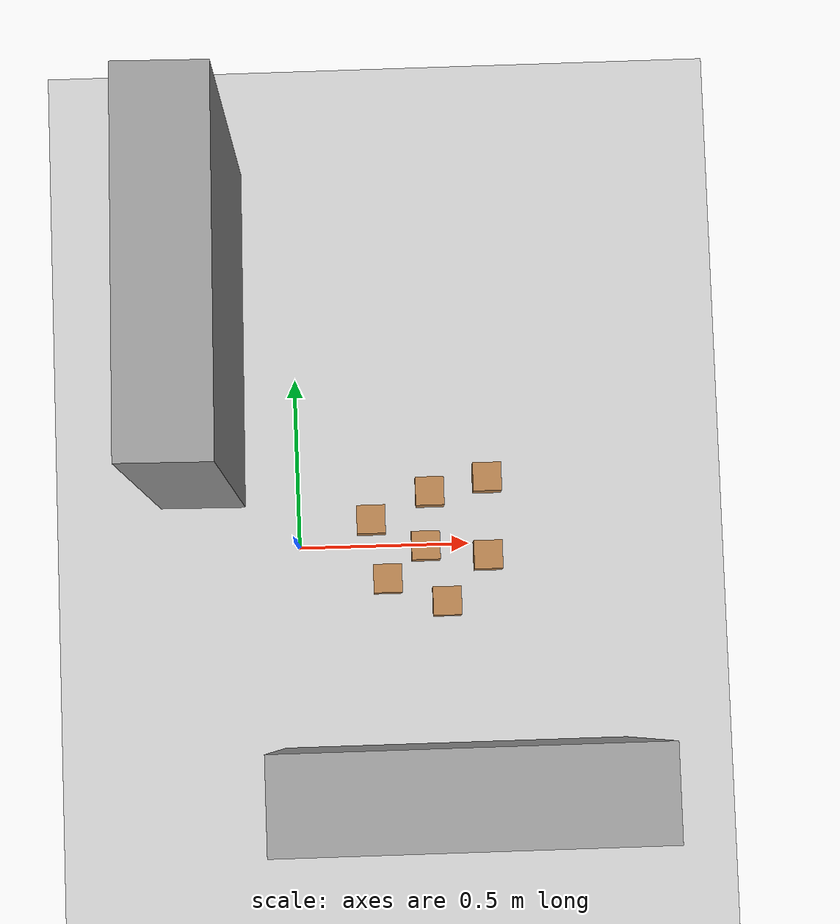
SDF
<sdf version="1.6">
 <world name="default">
  <light name="sun" type="directional">
   <pose>0 0 10 0 -0 0</pose>
   <diffuse>0.8 0.8 0.8 1</diffuse>
   <specular>0.2 0.2 0.2 1</specular>
   <attenuation>
    <range>1000</range>
    <constant>0.9</constant>
    <linear>0.01</linear>
    <quadratic>0.001</quadratic>
   </attenuation>
   <direction>-0.5 0.1 -0.9</direction>
  </light>
  <model name="ground_plane">
   <static>1</static>
   <link name="link">
    <collision name="collision">
     <geometry><plane><normal>0 0 1</normal><size>100 100</size></plane></geometry>
     <surface>
      <contact><collide_bitmask>65535</collide_bitmask></contact>
      <friction><ode><mu>100</mu><mu2>50</mu2></ode></friction>
     </surface>
    </collision>
    <visual name="visual">
     <cast_shadows>0</cast_shadows>
     <geometry><plane><normal>0 0 1</normal><size>100 100</size></plane></geometry>
     <material>
      <script><uri>file://media/materials/scripts/gazebo.material</uri><name>Gazebo/Grey</name></script>
     </material>
    </visual>
   </link>
  </model>
  <gravity>0 0 -9.8</gravity>
  <magnetic_field>6e-06 2.3e-05 -4.2e-05</magnetic_field>
  <atmosphere type="adiabatic"/>
  <physics name="default_physics" default="0" type="ode">
   <max_step_size>0.001</max_step_size>
   <real_time_factor>1</real_time_factor>
   <real_time_update_rate>1000</real_time_update_rate>
  </physics>
  <scene><ambient>0.4 0.4 0.4 1</ambient><background>0.7 0.7 0.7 1</background><shadows>1</shadows></scene>
  <audio><device>default</device></audio>
  <spherical_coordinates>
   <surface_model>EARTH_WGS84</surface_model>
   <latitude_deg>0</latitude_deg>
   <longitude_deg>0</longitude_deg>
   <elevation>0</elevation>
   <heading_deg>0</heading_deg>
  </spherical_coordinates>
  <model name="cube_red">
   <link name="link">
    <pose>0 0 0.0375 0 -0 0</pose>
    <inertial>
     <mass>0.2249</mass>
     <inertia>
      <ixx>0.00021084</ixx>
      <ixy>0</ixy>
      <ixz>0</ixz>
      <iyy>0.00021084</iyy>
      <iyz>0</iyz>
      <izz>0.00021084</izz>
     </inertia>
    </inertial>
    <visual name="visual">
     <geometry><box><size>0.075 0.075 0.075</size></box></geometry>
     <material>
      <script><uri>file://media/materials/scripts/gazebo.material</uri><name>Gazebo/Wood</name></script>
      <shader type="vertex"><normal_map>__default__</normal_map></shader>
      <ambient>0.937 0.161 0.161 1</ambient>
      <diffuse>0.937 0.161 0.161 1</diffuse>
      <specular>0.937 0.161 0.161 1</specular>
      <emissive>0 0 0 1</emissive>
     </material>
    </visual>
    <collision name="collision">
     <geometry><box><size>0.075 0.075 0.075</size></box></geometry>
     <surface>
      <friction>
       <ode><mu>1</mu><mu2>1</mu2><fdir1>0 0 0</fdir1><slip1>0</slip1><slip2>0</slip2></ode>
       <torsional>
        <coefficient>1</coefficient>
        <patch_radius>0</patch_radius>
        <surface_radius>0.01</surface_radius>
        <use_patch_radius>0</use_patch_radius>
        <ode><slip>0</slip></ode>
       </torsional>
      </friction>
      <bounce><restitution_coefficient>0</restitution_coefficient><threshold>1e+06</threshold></bounce>
      <contact>
       <collide_without_contact>0</collide_without_contact>
       <collide_without_contact_bitmask>1</collide_without_contact_bitmask>
       <collide_bitmask>1</collide_bitmask>
       <ode>
        <soft_cfm>0</soft_cfm>
        <soft_erp>0.2</soft_erp>
        <kp>100000</kp>
        <kd>100</kd>
        <max_vel>100</max_vel>
        <min_depth>0.001</min_depth>
       </ode>
       <bullet>
        <split_impulse>1</split_impulse>
        <split_impulse_penetration_threshold>-0.01</split_impulse_penetration_threshold>
        <soft_cfm>0</soft_cfm>
        <soft_erp>0.2</soft_erp>
        <kp>100000</kp>
        <kd>100</kd>
       </bullet>
      </contact>
     </surface>
    </collision>
   </link>
   <static>0</static>
   <pose>0.410301 -0.205673 0.773995 0 -0 0</pose>
  </model>
  <model name="cube_green">
   <link name="link">
    <pose>0 0 0.0375 0 -0 0</pose>
    <inertial>
     <mass>0.2249</mass>
     <inertia>
      <ixx>0.00021084</ixx>
      <ixy>0</ixy>
      <ixz>0</ixz>
      <iyy>0.00021084</iyy>
      <iyz>0</iyz>
      <izz>0.00021084</izz>
     </inertia>
    </inertial>
    <visual name="visual">
     <geometry><box><size>0.075 0.075 0.075</size></box></geometry>
     <material>
      <script><uri>file://media/materials/scripts/gazebo.material</uri><name>Gazebo/Wood</name></script>
      <ambient>0.306 0.604 0.024 1</ambient>
      <shader type="vertex"><normal_map>__default__</normal_map></shader>
      <diffuse>0.306 0.604 0.024 1</diffuse>
      <specular>0.306 0.604 0.024 1</specular>
      <emissive>0 0 0 1</emissive>
     </material>
    </visual>
    <collision name="collision">
     <geometry><box><size>0.075 0.075 0.075</size></box></geometry>
     <surface>
      <friction>
       <ode><mu>1</mu><mu2>1</mu2><fdir1>0 0 0</fdir1><slip1>0</slip1><slip2>0</slip2></ode>
       <torsional>
        <coefficient>1</coefficient>
        <patch_radius>0</patch_radius>
        <surface_radius>0.01</surface_radius>
        <use_patch_radius>0</use_patch_radius>
        <ode><slip>0</slip></ode>
       </torsional>
      </friction>
      <bounce><restitution_coefficient>0</restitution_coefficient><threshold>1e+06</threshold></bounce>
      <contact>
       <collide_without_contact>0</collide_without_contact>
       <collide_without_contact_bitmask>1</collide_without_contact_bitmask>
       <collide_bitmask>1</collide_bitmask>
       <ode>
        <soft_cfm>0</soft_cfm>
        <soft_erp>0.2</soft_erp>
        <kp>100000</kp>
        <kd>100</kd>
        <max_vel>100</max_vel>
        <min_depth>0.001</min_depth>
       </ode>
       <bullet>
        <split_impulse>1</split_impulse>
        <split_impulse_penetration_threshold>-0.01</split_impulse_penetration_threshold>
        <soft_cfm>0</soft_cfm>
        <soft_erp>0.2</soft_erp>
        <kp>100000</kp>
        <kd>100</kd>
       </bullet>
      </contact>
     </surface>
    </collision>
   </link>
   <static>0</static>
   <pose>0.256092 -0.141607 0.773995 0 -0 0</pose>
  </model>
  <model name="cube_red_clone">
   <link name="link">
    <pose>0 0 0.0375 0 -0 0</pose>
    <inertial>
     <mass>0.2249</mass>
     <inertia>
      <ixx>0.00021084</ixx>
      <ixy>0</ixy>
      <ixz>0</ixz>
      <iyy>0.00021084</iyy>
      <iyz>0</iyz>
      <izz>0.00021084</izz>
     </inertia>
    </inertial>
    <visual name="visual">
     <geometry><box><size>0.075 0.075 0.075</size></box></geometry>
     <material>
      <script><uri>file://media/materials/scripts/gazebo.material</uri><name>Gazebo/Wood</name></script>
      <shader type="vertex"><normal_map>__default__</normal_map></shader>
      <ambient>0.937 0.161 0.161 1</ambient>
      <diffuse>0.937 0.161 0.161 1</diffuse>
      <specular>0.937 0.161 0.161 1</specular>
      <emissive>0 0 0 1</emissive>
     </material>
    </visual>
    <collision name="collision">
     <geometry><box><size>0.075 0.075 0.075</size></box></geometry>
     <surface>
      <friction>
       <ode><mu>1</mu><mu2>1</mu2><fdir1>0 0 0</fdir1><slip1>0</slip1><slip2>0</slip2></ode>
       <torsional>
        <coefficient>1</coefficient>
        <patch_radius>0</patch_radius>
        <surface_radius>0.01</surface_radius>
        <use_patch_radius>0</use_patch_radius>
        <ode><slip>0</slip></ode>
       </torsional>
      </friction>
      <bounce><restitution_coefficient>0</restitution_coefficient><threshold>1e+06</threshold></bounce>
      <contact>
       <collide_without_contact>0</collide_without_contact>
       <collide_without_contact_bitmask>1</collide_without_contact_bitmask>
       <collide_bitmask>1</collide_bitmask>
       <ode>
        <soft_cfm>0</soft_cfm>
        <soft_erp>0.2</soft_erp>
        <kp>100000</kp>
        <kd>100</kd>
        <max_vel>100</max_vel>
        <min_depth>0.001</min_depth>
       </ode>
       <bullet>
        <split_impulse>1</split_impulse>
        <split_impulse_penetration_threshold>-0.01</split_impulse_penetration_threshold>
        <soft_cfm>0</soft_cfm>
        <soft_erp>0.2</soft_erp>
        <kp>100000</kp>
        <kd>100</kd>
       </bullet>
      </contact>
     </surface>
    </collision>
   </link>
   <static>0</static>
   <pose>0.526025 0.117655 0.773995 0 -0 0</pose>
  </model>
  <model name="cube_red_clone_0">
   <link name="link">
    <pose>0 0 0.0375 0 -0 0</pose>
    <inertial>
     <mass>0.2249</mass>
     <inertia>
      <ixx>0.00021084</ixx>
      <ixy>0</ixy>
      <ixz>0</ixz>
      <iyy>0.00021084</iyy>
      <iyz>0</iyz>
      <izz>0.00021084</izz>
     </inertia>
    </inertial>
    <visual name="visual">
     <geometry><box><size>0.075 0.075 0.075</size></box></geometry>
     <material>
      <script><uri>file://media/materials/scripts/gazebo.material</uri><name>Gazebo/Wood</name></script>
      <shader type="vertex"><normal_map>__default__</normal_map></shader>
      <ambient>0.937 0.161 0.161 1</ambient>
      <diffuse>0.937 0.161 0.161 1</diffuse>
      <specular>0.937 0.161 0.161 1</specular>
      <emissive>0 0 0 1</emissive>
     </material>
    </visual>
    <collision name="collision">
     <geometry><box><size>0.075 0.075 0.075</size></box></geometry>
     <surface>
      <friction>
       <ode><mu>1</mu><mu2>1</mu2><fdir1>0 0 0</fdir1><slip1>0</slip1><slip2>0</slip2></ode>
       <torsional>
        <coefficient>1</coefficient>
        <patch_radius>0</patch_radius>
        <surface_radius>0.01</surface_radius>
        <use_patch_radius>0</use_patch_radius>
        <ode><slip>0</slip></ode>
       </torsional>
      </friction>
      <bounce><restitution_coefficient>0</restitution_coefficient><threshold>1e+06</threshold></bounce>
      <contact>
       <collide_without_contact>0</collide_without_contact>
       <collide_without_contact_bitmask>1</collide_without_contact_bitmask>
       <collide_bitmask>1</collide_bitmask>
       <ode>
        <soft_cfm>0</soft_cfm>
        <soft_erp>0.2</soft_erp>
        <kp>100000</kp>
        <kd>100</kd>
        <max_vel>100</max_vel>
        <min_depth>0.001</min_depth>
       </ode>
       <bullet>
        <split_impulse>1</split_impulse>
        <split_impulse_penetration_threshold>-0.01</split_impulse_penetration_threshold>
        <soft_cfm>0</soft_cfm>
        <soft_erp>0.2</soft_erp>
        <kp>100000</kp>
        <kd>100</kd>
       </bullet>
      </contact>
     </surface>
    </collision>
   </link>
   <static>0</static>
   <pose>0.216669 0.014907 0.773995 0 -0 0</pose>
  </model>
  <model name="cube_green_clone">
   <link name="link">
    <pose>0 0 0.0375 0 -0 0</pose>
    <inertial>
     <mass>0.2249</mass>
     <inertia>
      <ixx>0.00021084</ixx>
      <ixy>0</ixy>
      <ixz>0</ixz>
      <iyy>0.00021084</iyy>
      <iyz>0</iyz>
      <izz>0.00021084</izz>
     </inertia>
    </inertial>
    <visual name="visual">
     <geometry><box><size>0.075 0.075 0.075</size></box></geometry>
     <material>
      <script><uri>file://media/materials/scripts/gazebo.material</uri><name>Gazebo/Wood</name></script>
      <ambient>0.306 0.604 0.024 1</ambient>
      <shader type="vertex"><normal_map>__default__</normal_map></shader>
      <diffuse>0.306 0.604 0.024 1</diffuse>
      <specular>0.306 0.604 0.024 1</specular>
      <emissive>0 0 0 1</emissive>
     </material>
    </visual>
    <collision name="collision">
     <geometry><box><size>0.075 0.075 0.075</size></box></geometry>
     <surface>
      <friction>
       <ode><mu>1</mu><mu2>1</mu2><fdir1>0 0 0</fdir1><slip1>0</slip1><slip2>0</slip2></ode>
       <torsional>
        <coefficient>1</coefficient>
        <patch_radius>0</patch_radius>
        <surface_radius>0.01</surface_radius>
        <use_patch_radius>0</use_patch_radius>
        <ode><slip>0</slip></ode>
       </torsional>
      </friction>
      <bounce><restitution_coefficient>0</restitution_coefficient><threshold>1e+06</threshold></bounce>
      <contact>
       <collide_without_contact>0</collide_without_contact>
       <collide_without_contact_bitmask>1</collide_without_contact_bitmask>
       <collide_bitmask>1</collide_bitmask>
       <ode>
        <soft_cfm>0</soft_cfm>
        <soft_erp>0.2</soft_erp>
        <kp>100000</kp>
        <kd>100</kd>
        <max_vel>100</max_vel>
        <min_depth>0.001</min_depth>
       </ode>
       <bullet>
        <split_impulse>1</split_impulse>
        <split_impulse_penetration_threshold>-0.01</split_impulse_penetration_threshold>
        <soft_cfm>0</soft_cfm>
        <soft_erp>0.2</soft_erp>
        <kp>100000</kp>
        <kd>100</kd>
       </bullet>
      </contact>
     </surface>
    </collision>
   </link>
   <static>0</static>
   <pose>0.37353 0.084625 0.773995 0 -0 0</pose>
  </model>
  <model name="cube_green_clone_0">
   <link name="link">
    <pose>0 0 0.0375 0 -0 0</pose>
    <inertial>
     <mass>0.2249</mass>
     <inertia>
      <ixx>0.00021084</ixx>
      <ixy>0</ixy>
      <ixz>0</ixz>
      <iyy>0.00021084</iyy>
      <iyz>0</iyz>
      <izz>0.00021084</izz>
     </inertia>
    </inertial>
    <visual name="visual">
     <geometry><box><size>0.075 0.075 0.075</size></box></geometry>
     <material>
      <script><uri>file://media/materials/scripts/gazebo.material</uri><name>Gazebo/Wood</name></script>
      <ambient>0.306 0.604 0.024 1</ambient>
      <shader type="vertex"><normal_map>__default__</normal_map></shader>
      <diffuse>0.306 0.604 0.024 1</diffuse>
      <specular>0.306 0.604 0.024 1</specular>
      <emissive>0 0 0 1</emissive>
     </material>
    </visual>
    <collision name="collision">
     <geometry><box><size>0.075 0.075 0.075</size></box></geometry>
     <surface>
      <friction>
       <ode><mu>1</mu><mu2>1</mu2><fdir1>0 0 0</fdir1><slip1>0</slip1><slip2>0</slip2></ode>
       <torsional>
        <coefficient>1</coefficient>
        <patch_radius>0</patch_radius>
        <surface_radius>0.01</surface_radius>
        <use_patch_radius>0</use_patch_radius>
        <ode><slip>0</slip></ode>
       </torsional>
      </friction>
      <bounce><restitution_coefficient>0</restitution_coefficient><threshold>1e+06</threshold></bounce>
      <contact>
       <collide_without_contact>0</collide_without_contact>
       <collide_without_contact_bitmask>1</collide_without_contact_bitmask>
       <collide_bitmask>1</collide_bitmask>
       <ode>
        <soft_cfm>0</soft_cfm>
        <soft_erp>0.2</soft_erp>
        <kp>100000</kp>
        <kd>100</kd>
        <max_vel>100</max_vel>
        <min_depth>0.001</min_depth>
       </ode>
       <bullet>
        <split_impulse>1</split_impulse>
        <split_impulse_penetration_threshold>-0.01</split_impulse_penetration_threshold>
        <soft_cfm>0</soft_cfm>
        <soft_erp>0.2</soft_erp>
        <kp>100000</kp>
        <kd>100</kd>
       </bullet>
      </contact>
     </surface>
    </collision>
   </link>
   <static>0</static>
   <pose>0.522076 -0.087765 0.773995 0 -0 0</pose>
  </model>
  <model name="obstacle">
   <link name="link">
    <inertial>
     <mass>1</mass>
     <inertia>
      <ixx>0.166667</ixx>
      <ixy>0</ixy>
      <ixz>0</ixz>
      <iyy>0.166667</iyy>
      <iyz>0</iyz>
      <izz>0.166667</izz>
     </inertia>
    </inertial>
    <visual name="visual">
     <geometry><box><size>1 0.25 1.35</size></box></geometry>
     <material>
      <script><name>Gazebo/Grey</name><uri>file://media/materials/scripts/gazebo.material</uri></script>
      <shader type="vertex"><normal_map>__default__</normal_map></shader>
      <ambient>0.3 0.3 0.3 1</ambient>
      <diffuse>0.7 0.7 0.7 1</diffuse>
      <specular>0.01 0.01 0.01 1</specular>
      <emissive>0 0 0 1</emissive>
     </material>
    </visual>
    <collision name="collision">
     <geometry><box><size>1 0.25 1.35</size></box></geometry>
     <surface>
      <friction>
       <ode><mu>1</mu><mu2>1</mu2><fdir1>0 0 0</fdir1><slip1>0</slip1><slip2>0</slip2></ode>
       <torsional>
        <coefficient>1</coefficient>
        <patch_radius>0</patch_radius>
        <surface_radius>0</surface_radius>
        <use_patch_radius>1</use_patch_radius>
        <ode><slip>0</slip></ode>
       </torsional>
      </friction>
      <bounce><restitution_coefficient>0</restitution_coefficient><threshold>1e+06</threshold></bounce>
      <contact>
       <collide_without_contact>0</collide_without_contact>
       <collide_without_contact_bitmask>1</collide_without_contact_bitmask>
       <collide_bitmask>1</collide_bitmask>
       <ode>
        <soft_cfm>0</soft_cfm>
        <soft_erp>0.2</soft_erp>
        <kp>1e+13</kp>
        <kd>1</kd>
        <max_vel>0.01</max_vel>
        <min_depth>0</min_depth>
       </ode>
       <bullet>
        <split_impulse>1</split_impulse>
        <split_impulse_penetration_threshold>-0.01</split_impulse_penetration_threshold>
        <soft_cfm>0</soft_cfm>
        <soft_erp>0.2</soft_erp>
        <kp>1e+13</kp>
        <kd>1</kd>
       </bullet>
      </contact>
     </surface>
    </collision>
   </link>
   <static>0</static>
   <pose>0.443406 -0.709268 0.675001 0 3e-06 7e-05</pose>
  </model>
  <model name="obstacle_clone">
   <link name="link">
    <inertial>
     <mass>1</mass>
     <inertia>
      <ixx>0.166667</ixx>
      <ixy>0</ixy>
      <ixz>0</ixz>
      <iyy>0.166667</iyy>
      <iyz>0</iyz>
      <izz>0.166667</izz>
     </inertia>
    </inertial>
    <visual name="visual">
     <geometry><box><size>1 0.25 1.35</size></box></geometry>
     <material>
      <script><name>Gazebo/Grey</name><uri>file://media/materials/scripts/gazebo.material</uri></script>
      <shader type="vertex"><normal_map>__default__</normal_map></shader>
      <ambient>0.3 0.3 0.3 1</ambient>
      <diffuse>0.7 0.7 0.7 1</diffuse>
      <specular>0.01 0.01 0.01 1</specular>
      <emissive>0 0 0 1</emissive>
     </material>
    </visual>
    <collision name="collision">
     <geometry><box><size>1 0.25 1.35</size></box></geometry>
     <surface>
      <friction>
       <ode><mu>1</mu><mu2>1</mu2><fdir1>0 0 0</fdir1><slip1>0</slip1><slip2>0</slip2></ode>
       <torsional>
        <coefficient>1</coefficient>
        <patch_radius>0</patch_radius>
        <surface_radius>0</surface_radius>
        <use_patch_radius>1</use_patch_radius>
        <ode><slip>0</slip></ode>
       </torsional>
      </friction>
      <bounce><restitution_coefficient>0</restitution_coefficient><threshold>1e+06</threshold></bounce>
      <contact>
       <collide_without_contact>0</collide_without_contact>
       <collide_without_contact_bitmask>1</collide_without_contact_bitmask>
       <collide_bitmask>1</collide_bitmask>
       <ode>
        <soft_cfm>0</soft_cfm>
        <soft_erp>0.2</soft_erp>
        <kp>1e+13</kp>
        <kd>1</kd>
        <max_vel>0.01</max_vel>
        <min_depth>0</min_depth>
       </ode>
       <bullet>
        <split_impulse>1</split_impulse>
        <split_impulse_penetration_threshold>-0.01</split_impulse_penetration_threshold>
        <soft_cfm>0</soft_cfm>
        <soft_erp>0.2</soft_erp>
        <kp>1e+13</kp>
        <kd>1</kd>
       </bullet>
      </contact>
     </surface>
    </collision>
   </link>
   <static>0</static>
   <pose>-0.275287 0.630557 0.674996 0 -7e-06 -1.58552</pose>
  </model>
  <model name="wood_cube_7_5cm">
   <link name="link">
    <pose>0 0 0.0375 0 -0 0</pose>
    <inertial>
     <mass>0.2249</mass>
     <inertia>
      <ixx>0.000210844</ixx>
      <ixy>0</ixy>
      <ixz>0</ixz>
      <iyy>0.000210844</iyy>
      <iyz>0</iyz>
      <izz>0.000210844</izz>
     </inertia>
    </inertial>
    <collision name="collision">
     <geometry><box><size>0.075 0.075 0.075</size></box></geometry>
     <surface>
      <contact>
       <poissons_ratio>0.347</poissons_ratio>
       <elastic_modulus>8.8e+09</elastic_modulus>
       <ode><kp>100000</kp><kd>100</kd><max_vel>100</max_vel><min_depth>0.001</min_depth></ode>
      </contact>
      <friction>
       <torsional>
        <coefficient>1</coefficient>
        <use_patch_radius>0</use_patch_radius>
        <surface_radius>0.01</surface_radius>
       </torsional>
      </friction>
     </surface>
    </collision>
    <visual name="visual">
     <geometry><box><size>0.075 0.075 0.075</size></box></geometry>
     <material>
      <script><uri>file://media/materials/scripts/gazebo.material</uri><name>Gazebo/Wood</name></script>
     </material>
    </visual>
   </link>
   <pose>0.358705 -0.057997 0.773995 0 -0 0</pose>
  </model>
 </world>
</sdf>
